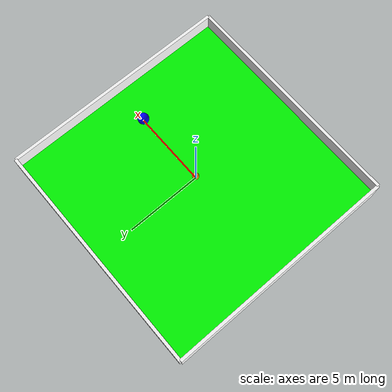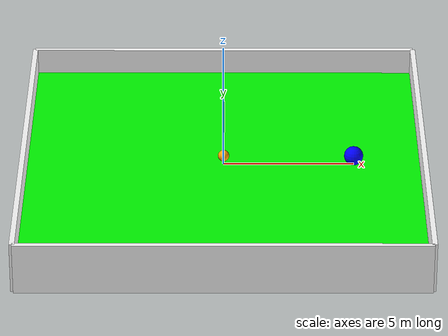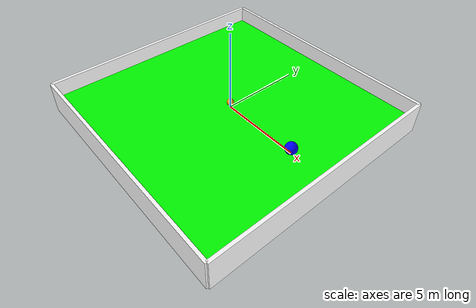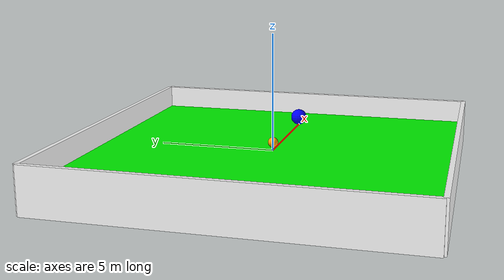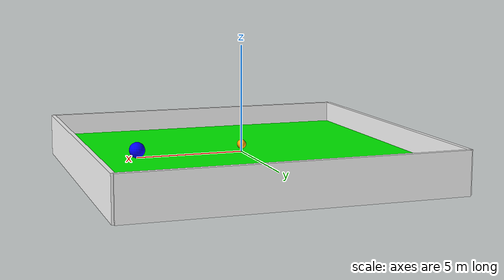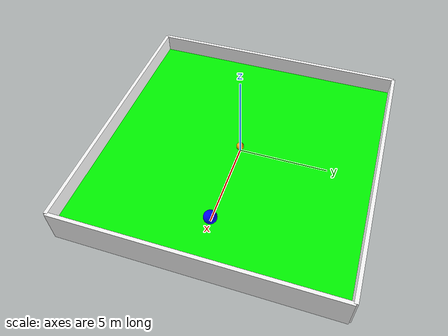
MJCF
<mujoco>
    <asset>
		<material name="floor" texture="checks1" texrepeat="2 2" texuniform="true"/>
		<texture name="checks1" builtin="checker" type='2d' width='256' height='256' rgb1="1 1 1" rgb2="0 0 0" />
		<material name="object" texture="checks2" texrepeat="2 2" texuniform="true"/>
		<texture name="checks2" builtin="checker" type='2d' width='256' height='256' rgb1="1 0 0" rgb2="0 1 0" />
	</asset>
    <default>
        <geom condim="3" friction="1 0.5 0.5"/>
    </default>

    <worldbody>
        <!--Stadium-->
        <geom name="stadium" type="plane" size="7.65 7.65 0.1" pos="0 0 0" rgba="0 1 0 1" />

        <!--Boundaries-->
        <body name="boundaries">
            <geom name="boundary_1" type="box" size="7.65 0.1 1" pos="0 -7.65 0" rgba="1 1 1 1" />
            <geom name="boundary_2" type="box" size="0.1 7.65 1" pos="-7.65 0 0" rgba="1 1 1 1" />
            <geom name="boundary_3" type="box" size="7.65 0.1 1" pos="0 7.65 0" rgba="1 1 1 1" />
            <geom name="boundary_4" type="box" size="0.1 7.65 1" pos="7.65 0 0" rgba="1 1 1 1" />
        </body>

        <!--Goal posts-->
        <!--Goal post 1-->

        <!--Goal post 2-->

        <!-- Field Markings -->
        <!-- Field Lines -->
            <!-- Touch lines -->
            <!-- Goal lines -->

        <!-- Halfway Lines -->
            <!-- Halfway Line -->

            <!-- Goal-to-Goal Line -->

        <!-- Defence area -->

		<!-- Team A -->
        <!-- Player 1 -->
        <body name="agent" pos="0 0 0.365">
            <geom name="sphero1" type="sphere" size="0.215"  rgba="1 0.647 0 1" mass="1" friction="1" />
            <joint type="free"/>
        </body>

        <!-- Ball -->
        <body name="ball" pos="5 0 0.365" >
            <geom name="ball_g" type="sphere" size="0.365"  rgba="0 0 1 1"  mass="1" material="object" friction="1" />
            <joint type="free"/>
        </body>

        <!--Obstacles-->

    </worldbody>

</mujoco>
